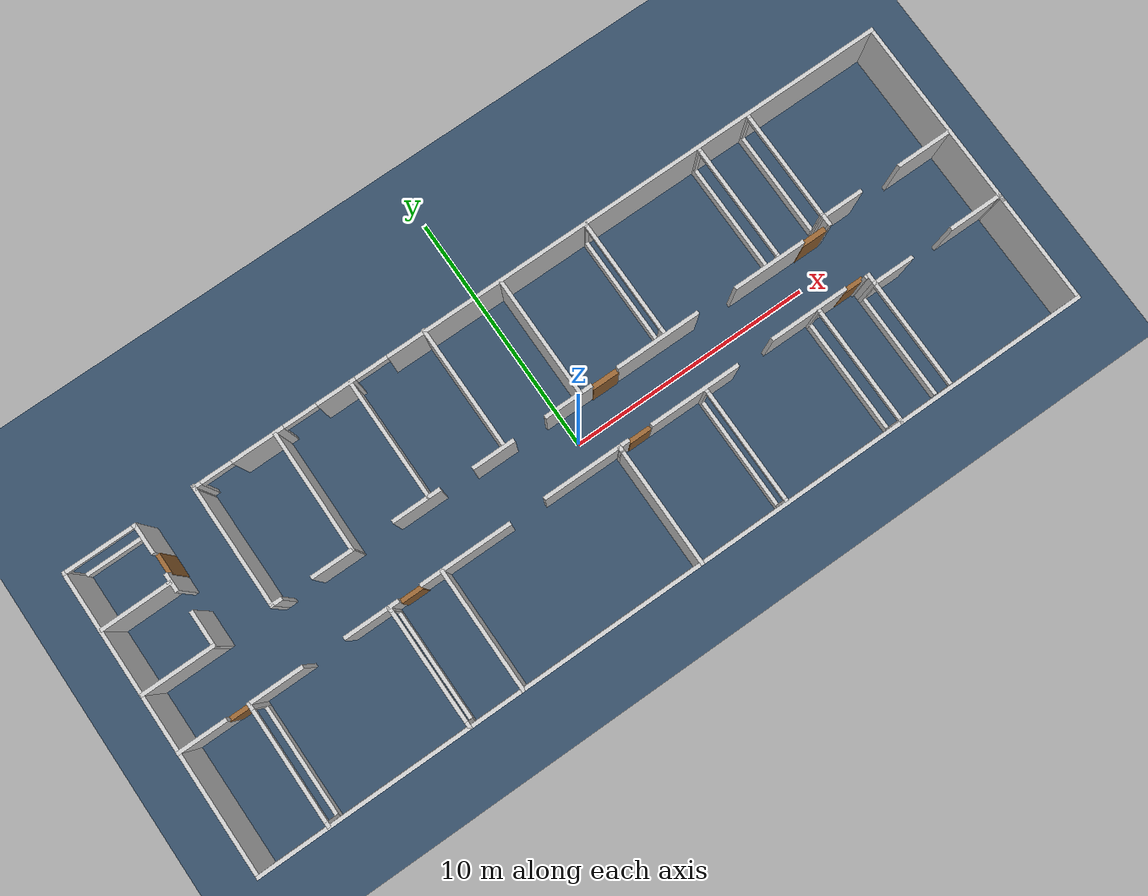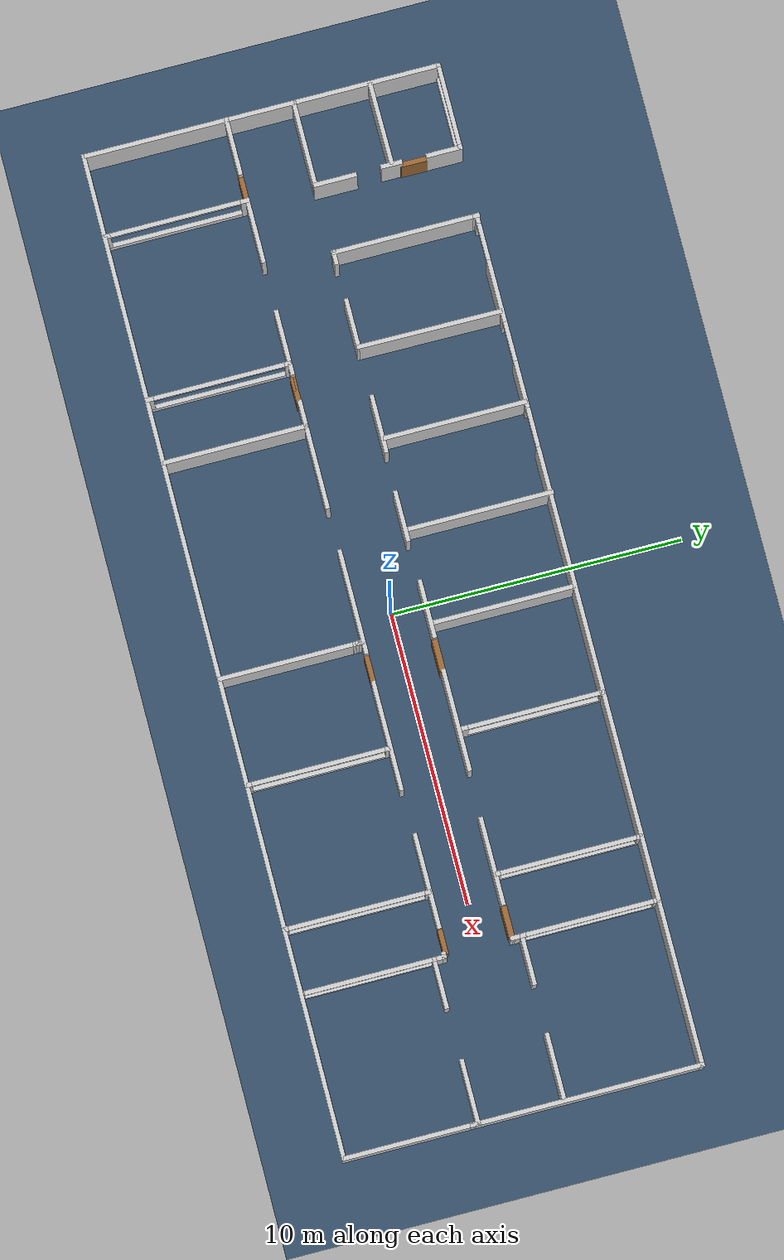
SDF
<sdf version="1.9">
 <world name="loyola">
  <physics name="1ms" type="ignored">
   <max_step_size>0.0025</max_step_size>
   <real_time_factor>1.0</real_time_factor>
  </physics>
  <plugin filename="ignition-gazebo-physics-system" name="gz::sim::systems::Physics"/>
  <plugin filename="ignition-gazebo-sensors-system" name="gz::sim::systems::Sensors">
   <render_engine>ogre2</render_engine>
  </plugin>
  <plugin filename="ignition-gazebo-imu-system" name="gz::sim::systems::Imu"/>
  <plugin filename="ignition-gazebo-scene-broadcaster-system" name="gz::sim::systems::SceneBroadcaster"/>
  <plugin filename="ignition-gazebo-user-commands-system" name="gz::sim::systems::UserCommands"/>
  <scene>
   <ambient>0.3 0.3 0.3 1.0</ambient>
   <background>0.8 0.8 0.8 1.0</background>
   <grid>false</grid>
   <origin_visual>false</origin_visual>
   <shadows>false</shadows>
  </scene>
  <light type="directional" name="sun">
   <cast_shadows>false</cast_shadows>
   <pose>0 0 10 0 0 0</pose>
   <diffuse>0.8 0.8 0.8 1</diffuse>
   <specular>0.2 0.2 0.2 1</specular>
   <attenuation>
    <range>1000</range>
    <constant>0.9</constant>
    <linear>0.01</linear>
    <quadratic>0.001</quadratic>
   </attenuation>
   <direction>-0.25 0.25 -0.9</direction>
  </light>
  <model name="ground_plane">
   <static>true</static>
   <link name="link">
    <collision name="collision">
     <geometry><plane><normal>0 0 1</normal><size>40 15</size></plane></geometry>
    </collision>
    <visual name="visual">
     <geometry><plane><normal>0 0 1</normal><size>40 15</size></plane></geometry>
     <material>
      <ambient>0.2 0.3 0.4 1</ambient>
      <diffuse>0.2 0.3 0.4 1</diffuse>
      <specular>0.1 0.1 0.1 1</specular>
     </material>
    </visual>
   </link>
  </model>
  <model name="Loyola">
   <pose>0.01158 0.01152 0 0 -0 0</pose>
   <link name="Door_0">
    <collision name="Door_0_Collision">
     <geometry><box><size>0.9 0.17 2</size></box></geometry>
     <pose>0 0 1 0 -0 0</pose>
    </collision>
    <visual name="Door_0_Visual">
     <pose>0 0 1 0 -0 0</pose>
     <geometry><box><size>0.9 0.17 2</size></box></geometry>
     <material><ambient>0.6 0.4 0.2 1</ambient><diffuse>0.6 0.4 0.2 1</diffuse></material>
    </visual>
    <pose>-7.88567 -1.23425 0 0 -0 0</pose>
   </link>
   <link name="Door_11">
    <collision name="Door_11_Collision">
     <geometry><box><size>0.9 0.17 2</size></box></geometry>
     <pose>0 0 1 0 -0 0</pose>
    </collision>
    <visual name="Door_11_Visual">
     <pose>0 0 1 0 -0 0</pose>
     <geometry><box><size>0.9 0.17 2</size></box></geometry>
     <material><ambient>0.6 0.4 0.2 1</ambient><diffuse>0.6 0.4 0.2 1</diffuse></material>
    </visual>
    <pose>1.76233 -1.19882 0 0 -0 0</pose>
   </link>
   <link name="Door_12">
    <collision name="Door_12_Collision">
     <geometry><box><size>0.9 0.17 2</size></box></geometry>
     <pose>0 0 1 0 -0 0</pose>
    </collision>
    <visual name="Door_12_Visual">
     <pose>0 0 1 0 -0 0</pose>
     <geometry><box><size>0.9 0.17 2</size></box></geometry>
     <material><ambient>0.6 0.4 0.2 1</ambient><diffuse>0.6 0.4 0.2 1</diffuse></material>
    </visual>
    <pose>11.0856 -1.15143 0 0 -0 0</pose>
   </link>
   <link name="Door_13">
    <collision name="Door_13_Collision">
     <geometry><box><size>1.06522 0.2 2</size></box></geometry>
     <pose>0 0 1 0 -0 0</pose>
    </collision>
    <visual name="Door_13_Visual">
     <pose>0 0 1 0 -0 0</pose>
     <geometry><box><size>1.06522 0.2 2</size></box></geometry>
     <material><ambient>0.6 0.4 0.2 1</ambient><diffuse>0.6 0.4 0.2 1</diffuse></material>
    </visual>
    <pose>11.0002 1.08329 0 0 -0 0</pose>
   </link>
   <link name="Door_14">
    <collision name="Door_14_Collision">
     <geometry><box><size>1.09762 0.2 2</size></box></geometry>
     <pose>0 0 1 0 -0 0</pose>
    </collision>
    <visual name="Door_14_Visual">
     <pose>0 0 1 0 -0 0</pose>
     <geometry><box><size>1.09762 0.2 2</size></box></geometry>
     <material><ambient>0.6 0.4 0.2 1</ambient><diffuse>0.6 0.4 0.2 1</diffuse></material>
    </visual>
    <pose>1.89125 1.11694 0 0 -0 0</pose>
   </link>
   <link name="Door_4">
    <collision name="Door_4_Collision">
     <geometry><box><size>0.9 0.17 2</size></box></geometry>
     <pose>0 0 1 0 -0 0</pose>
    </collision>
    <visual name="Door_4_Visual">
     <pose>0 0 1 0 -0 0</pose>
     <geometry><box><size>0.9 0.17 2</size></box></geometry>
     <material><ambient>0.6 0.4 0.2 1</ambient><diffuse>0.6 0.4 0.2 1</diffuse></material>
    </visual>
    <pose>-14.3181 4.49137 0 0 -0 1.56919</pose>
   </link>
   <link name="Door_7">
    <collision name="Door_7_Collision">
     <geometry><box><size>0.9 0.17 2</size></box></geometry>
     <pose>0 0 1 0 -0 0</pose>
    </collision>
    <visual name="Door_7_Visual">
     <pose>0 0 1 0 -0 0</pose>
     <geometry><box><size>0.9 0.17 2</size></box></geometry>
     <material><ambient>0.6 0.4 0.2 1</ambient><diffuse>0.6 0.4 0.2 1</diffuse></material>
    </visual>
    <pose>-14.895 -1.20399 0 0 -0 0</pose>
   </link>
   <link name="Door_8">
    <collision name="Door_8_Collision">
     <geometry><box><size>0.9 0.17 2</size></box></geometry>
     <pose>0 0 1 0 -0 0</pose>
    </collision>
    <visual name="Door_8_Visual">
     <pose>0 0 1 0 -0 0</pose>
     <geometry><box><size>0.9 0.17 2</size></box></geometry>
     <material><ambient>0.6 0.4 0.2 1</ambient><diffuse>0.6 0.4 0.2 1</diffuse></material>
    </visual>
    <pose>-7.88095 -1.22731 0 0 -0 0</pose>
   </link>
   <link name="Wall_101">
    <collision name="Wall_101_Collision">
     <geometry><box><size>0.5 0.15 2.5</size></box></geometry>
     <pose>0 0 1.25 0 -0 0</pose>
    </collision>
    <visual name="Wall_101_Visual">
     <pose>0 0 1.25 0 -0 0</pose>
     <geometry><box><size>0.5 0.15 2.5</size></box></geometry>
     <material><ambient>0.8 0.8 0.8 1</ambient><diffuse>0.8 0.8 0.8 1</diffuse></material>
     <meta><layer>0</layer></meta>
    </visual>
    <pose>-11.7788 1.1323 0 0 -0 3.14159</pose>
   </link>
   <link name="Wall_104">
    <collision name="Wall_104_Collision">
     <geometry><box><size>5 0.15 2.5</size></box></geometry>
     <pose>0 0 1.25 0 -0 0</pose>
    </collision>
    <visual name="Wall_104_Visual">
     <pose>0 0 1.25 0 -0 0</pose>
     <geometry><box><size>5 0.15 2.5</size></box></geometry>
     <material><ambient>0.8 0.8 0.8 1</ambient><diffuse>0.8 0.8 0.8 1</diffuse></material>
     <meta><layer>0</layer></meta>
    </visual>
    <pose>-11.9538 3.5573 0 0 -0 1.5708</pose>
   </link>
   <link name="Wall_105">
    <collision name="Wall_105_Collision">
     <geometry><box><size>0.25 0.15 2.5</size></box></geometry>
     <pose>0 0 1.25 0 -0 0</pose>
    </collision>
    <visual name="Wall_105_Visual">
     <pose>0 0 1.25 0 -0 0</pose>
     <geometry><box><size>0.25 0.15 2.5</size></box></geometry>
     <material><ambient>0.8 0.8 0.8 1</ambient><diffuse>0.8 0.8 0.8 1</diffuse></material>
     <meta><layer>0</layer></meta>
    </visual>
    <pose>-11.9538 6.03231 0 0 -0 1.5708</pose>
   </link>
   <link name="Wall_110">
    <collision name="Wall_110_Collision">
     <geometry><box><size>0.15 0.15 2.5</size></box></geometry>
     <pose>0 0 1.25 0 -0 0</pose>
    </collision>
    <visual name="Wall_110_Visual">
     <pose>0 0 1.25 0 -0 0</pose>
     <geometry><box><size>0.15 0.15 2.5</size></box></geometry>
     <material><ambient>0.8 0.8 0.8 1</ambient><diffuse>0.8 0.8 0.8 1</diffuse></material>
     <meta><layer>0</layer></meta>
    </visual>
    <pose>-14.4103 3.76218 0 0 -0 0</pose>
   </link>
   <link name="Wall_113">
    <collision name="Wall_113_Collision">
     <geometry><box><size>0.75 0.15 2.5</size></box></geometry>
     <pose>0 0 1.25 0 -0 0</pose>
    </collision>
    <visual name="Wall_113_Visual">
     <pose>0 0 1.25 0 -0 0</pose>
     <geometry><box><size>0.75 0.15 2.5</size></box></geometry>
     <material><ambient>0.8 0.8 0.8 1</ambient><diffuse>0.8 0.8 0.8 1</diffuse></material>
     <meta><layer>0</layer></meta>
    </visual>
    <pose>-14.3366 3.74353 0 0 -0 -1.5708</pose>
   </link>
   <link name="Wall_115">
    <collision name="Wall_115_Collision">
     <geometry><box><size>2.85056 0.15 2.5</size></box></geometry>
     <pose>0 0 1.25 0 -0 0</pose>
    </collision>
    <visual name="Wall_115_Visual">
     <pose>0 0 1.25 0 -0 0</pose>
     <geometry><box><size>2.85056 0.15 2.5</size></box></geometry>
     <material><ambient>0.8 0.8 0.8 1</ambient><diffuse>0.8 0.8 0.8 1</diffuse></material>
     <meta><layer>0</layer></meta>
    </visual>
    <pose>-15.7606 3.75157 0 0 -0 0.007857</pose>
   </link>
   <link name="Wall_118">
    <collision name="Wall_118_Collision">
     <geometry><box><size>12.25 0.15 2.5</size></box></geometry>
     <pose>0 0 1.25 0 -0 0</pose>
    </collision>
    <visual name="Wall_118_Visual">
     <pose>0 0 1.25 0 -0 0</pose>
     <geometry><box><size>12.25 0.15 2.5</size></box></geometry>
     <material><ambient>0.8 0.8 0.8 1</ambient><diffuse>0.8 0.8 0.8 1</diffuse></material>
     <meta><layer>0</layer></meta>
    </visual>
    <pose>-17.1766 -0.048952 0 0 -0 1.5708</pose>
   </link>
   <link name="Wall_12">
    <collision name="Wall_12_Collision">
     <geometry><box><size>7.75 0.15 2.5</size></box></geometry>
     <pose>0 0 1.25 0 -0 0</pose>
    </collision>
    <visual name="Wall_12_Visual">
     <pose>0 0 1.25 0 -0 0</pose>
     <geometry><box><size>7.75 0.15 2.5</size></box></geometry>
     <material><ambient>0.8 0.8 0.8 1</ambient><diffuse>0.8 0.8 0.8 1</diffuse></material>
     <meta><layer>0</layer></meta>
    </visual>
    <pose>17.1864 2.25105 0 0 -0 1.5708</pose>
   </link>
   <link name="Wall_120">
    <collision name="Wall_120_Collision">
     <geometry><box><size>2 0.15 2.5</size></box></geometry>
     <pose>0 0 1.25 0 -0 0</pose>
    </collision>
    <visual name="Wall_120_Visual">
     <pose>0 0 1.25 0 -0 0</pose>
     <geometry><box><size>2 0.15 2.5</size></box></geometry>
     <material><ambient>0.8 0.8 0.8 1</ambient><diffuse>0.8 0.8 0.8 1</diffuse></material>
     <meta><layer>0</layer></meta>
    </visual>
    <pose>-16.2614 -1.19554 0 0 -0 3.14159</pose>
   </link>
   <link name="Wall_124">
    <collision name="Wall_124_Collision">
     <geometry><box><size>0.5 0.15 2.5</size></box></geometry>
     <pose>0 0 1.25 0 -0 0</pose>
    </collision>
    <visual name="Wall_124_Visual">
     <pose>0 0 1.25 0 -0 0</pose>
     <geometry><box><size>0.5 0.15 2.5</size></box></geometry>
     <material><ambient>0.8 0.8 0.8 1</ambient><diffuse>0.8 0.8 0.8 1</diffuse></material>
     <meta><layer>0</layer></meta>
    </visual>
    <pose>1.05325 -1.18357 0 0 -0 0</pose>
   </link>
   <link name="Wall_126">
    <collision name="Wall_126_Collision">
     <geometry><box><size>0.15 0.15 2.5</size></box></geometry>
     <pose>0 0 1.25 0 -0 0</pose>
    </collision>
    <visual name="Wall_126_Visual">
     <pose>0 0 1.25 0 -0 0</pose>
     <geometry><box><size>0.15 0.15 2.5</size></box></geometry>
     <material><ambient>0.8 0.8 0.8 1</ambient><diffuse>0.8 0.8 0.8 1</diffuse></material>
     <meta><layer>0</layer></meta>
    </visual>
    <pose>11.5977 1.07049 0 0 -0 0</pose>
   </link>
   <link name="Wall_13">
    <pose>2.63637 6.05105 0 0 -0 3.14159</pose>
    <visual name="Wall_13_Visual_0">
     <pose>-4.02332 0 1.25 0 -0 0</pose>
     <geometry><box><size>21.2034 0.15 2.5</size></box></geometry>
     <material><ambient>0.8 0.8 0.8 1</ambient><diffuse>0.8 0.8 0.8 1</diffuse></material>
     <meta><layer>0</layer></meta>
    </visual>
    <collision name="Wall_13_Collision_0">
     <geometry><box><size>21.2034 0.15 2.5</size></box></geometry>
     <pose>-4.02332 0 1.25 0 -0 0</pose>
    </collision>
    <visual name="Wall_13_Visual_1">
     <pose>8.7334 0 1.25 0 -0 0</pose>
     <geometry><box><size>1.61371 0.15 2.5</size></box></geometry>
     <material><ambient>0.8 0.8 0.8 1</ambient><diffuse>0.8 0.8 0.8 1</diffuse></material>
     <meta><layer>0</layer></meta>
    </visual>
    <collision name="Wall_13_Collision_1">
     <geometry><box><size>1.61371 0.15 2.5</size></box></geometry>
     <pose>8.7334 0 1.25 0 -0 0</pose>
    </collision>
    <visual name="Wall_13_Visual_2">
     <pose>11.9771 0 1.25 0 -0 0</pose>
     <geometry><box><size>2.13835 0.15 2.5</size></box></geometry>
     <material><ambient>0.8 0.8 0.8 1</ambient><diffuse>0.8 0.8 0.8 1</diffuse></material>
     <meta><layer>0</layer></meta>
    </visual>
    <collision name="Wall_13_Collision_2">
     <geometry><box><size>2.13835 0.15 2.5</size></box></geometry>
     <pose>11.9771 0 1.25 0 -0 0</pose>
    </collision>
    <visual name="Wall_13_Visual_3">
     <pose>14.4717 0 1.25 0 -0 0</pose>
     <geometry><box><size>0.30661 0.15 2.5</size></box></geometry>
     <material><ambient>0.8 0.8 0.8 1</ambient><diffuse>0.8 0.8 0.8 1</diffuse></material>
     <meta><layer>0</layer></meta>
    </visual>
    <collision name="Wall_13_Collision_3">
     <geometry><box><size>0.30661 0.15 2.5</size></box></geometry>
     <pose>14.4717 0 1.25 0 -0 0</pose>
    </collision>
    <visual name="Wall_13_Visual_4">
     <pose>7.25245 0 2.25 0 -0 0</pose>
     <geometry><box><size>1.34818 0.15 0.5</size></box></geometry>
     <material><ambient>0.8 0.8 0.8 1</ambient><diffuse>0.8 0.8 0.8 1</diffuse></material>
     <meta><layer>0</layer></meta>
    </visual>
    <collision name="Wall_13_Collision_4">
     <geometry><box><size>1.34818 0.15 0.5</size></box></geometry>
     <pose>7.25245 0 2.25 0 -0 0</pose>
    </collision>
    <visual name="Wall_13_Visual_5">
     <pose>10.2241 0 2.25 0 -0 0</pose>
     <geometry><box><size>1.36767 0.15 0.5</size></box></geometry>
     <material><ambient>0.8 0.8 0.8 1</ambient><diffuse>0.8 0.8 0.8 1</diffuse></material>
     <meta><layer>0</layer></meta>
    </visual>
    <collision name="Wall_13_Collision_5">
     <geometry><box><size>1.36767 0.15 0.5</size></box></geometry>
     <pose>10.2241 0 2.25 0 -0 0</pose>
    </collision>
    <visual name="Wall_13_Visual_6">
     <pose>13.6823 0 2.25 0 -0 0</pose>
     <geometry><box><size>1.27212 0.15 0.5</size></box></geometry>
     <material><ambient>0.8 0.8 0.8 1</ambient><diffuse>0.8 0.8 0.8 1</diffuse></material>
     <meta><layer>0</layer></meta>
    </visual>
    <collision name="Wall_13_Collision_6">
     <geometry><box><size>1.27212 0.15 0.5</size></box></geometry>
     <pose>13.6823 0 2.25 0 -0 0</pose>
    </collision>
   </link>
   <link name="Wall_132">
    <collision name="Wall_132_Collision">
     <geometry><box><size>1.75 0.15 2.5</size></box></geometry>
     <pose>0 0 1.25 0 -0 0</pose>
    </collision>
    <visual name="Wall_132_Visual">
     <pose>0 0 1.25 0 -0 0</pose>
     <geometry><box><size>1.75 0.15 2.5</size></box></geometry>
     <material><ambient>0.8 0.8 0.8 1</ambient><diffuse>0.8 0.8 0.8 1</diffuse></material>
     <meta><layer>0</layer></meta>
    </visual>
    <pose>12.3958 1.40203 0 0 -0 3.14159</pose>
   </link>
   <link name="Wall_134">
    <collision name="Wall_134_Collision">
     <geometry><box><size>0.15 0.15 2.5</size></box></geometry>
     <pose>0 0 1.25 0 -0 0</pose>
    </collision>
    <visual name="Wall_134_Visual">
     <pose>0 0 1.25 0 -0 0</pose>
     <geometry><box><size>0.15 0.15 2.5</size></box></geometry>
     <material><ambient>0.8 0.8 0.8 1</ambient><diffuse>0.8 0.8 0.8 1</diffuse></material>
     <meta><layer>0</layer></meta>
    </visual>
    <pose>11.5977 1.07049 0 0 -0 0</pose>
   </link>
   <link name="Wall_136">
    <collision name="Wall_136_Collision">
     <geometry><box><size>0.48154 0.15 2.5</size></box></geometry>
     <pose>0 0 1.25 0 -0 0</pose>
    </collision>
    <visual name="Wall_136_Visual">
     <pose>0 0 1.25 0 -0 0</pose>
     <geometry><box><size>0.48154 0.15 2.5</size></box></geometry>
     <material><ambient>0.8 0.8 0.8 1</ambient><diffuse>0.8 0.8 0.8 1</diffuse></material>
     <meta><layer>0</layer></meta>
    </visual>
    <pose>11.5968 1.23626 0 0 -0 -1.56493</pose>
   </link>
   <link name="Wall_138">
    <pose>-14.3764 -3.61957 0 0 -0 -1.5708</pose>
    <visual name="Wall_138_Visual_0">
     <pose>-2.34104 0 1.25 0 -0 0</pose>
     <geometry><box><size>0.317931 0.15 2.5</size></box></geometry>
     <material><ambient>0.8 0.8 0.8 1</ambient><diffuse>0.8 0.8 0.8 1</diffuse></material>
     <meta><layer>0</layer></meta>
    </visual>
    <collision name="Wall_138_Collision_0">
     <geometry><box><size>0.317931 0.15 2.5</size></box></geometry>
     <pose>-2.34104 0 1.25 0 -0 0</pose>
    </collision>
    <visual name="Wall_138_Visual_1">
     <pose>0.158965 0 0.25 0 -0 0</pose>
     <geometry><box><size>4.68207 0.15 0.5</size></box></geometry>
     <material><ambient>0.8 0.8 0.8 1</ambient><diffuse>0.8 0.8 0.8 1</diffuse></material>
     <meta><layer>0</layer></meta>
    </visual>
    <collision name="Wall_138_Collision_1">
     <geometry><box><size>4.68207 0.15 0.5</size></box></geometry>
     <pose>0.158965 0 0.25 0 -0 0</pose>
    </collision>
    <visual name="Wall_138_Visual_2">
     <pose>2.39397 0 1.5 0 -0 0</pose>
     <geometry><box><size>0.212069 0.15 2</size></box></geometry>
     <material><ambient>0.8 0.8 0.8 1</ambient><diffuse>0.8 0.8 0.8 1</diffuse></material>
     <meta><layer>0</layer></meta>
    </visual>
    <collision name="Wall_138_Collision_2">
     <geometry><box><size>0.212069 0.15 2</size></box></geometry>
     <pose>2.39397 0 1.5 0 -0 0</pose>
    </collision>
    <visual name="Wall_138_Visual_3">
     <pose>0.052931 0 2.4 0 -0 0</pose>
     <geometry><box><size>4.47 0.15 0.2</size></box></geometry>
     <material><ambient>0.8 0.8 0.8 1</ambient><diffuse>0.8 0.8 0.8 1</diffuse></material>
     <meta><layer>0</layer></meta>
    </visual>
    <collision name="Wall_138_Collision_3">
     <geometry><box><size>4.47 0.15 0.2</size></box></geometry>
     <pose>0.052931 0 2.4 0 -0 0</pose>
    </collision>
   </link>
   <link name="Wall_140">
    <pose>4.5175 -3.63037 0 0 -0 -1.5708</pose>
    <visual name="Wall_140_Visual_0">
     <pose>-2.36498 0 1.25 0 -0 0</pose>
     <geometry><box><size>0.270042 0.15 2.5</size></box></geometry>
     <material><ambient>0.8 0.8 0.8 1</ambient><diffuse>0.8 0.8 0.8 1</diffuse></material>
     <meta><layer>0</layer></meta>
    </visual>
    <collision name="Wall_140_Collision_0">
     <geometry><box><size>0.270042 0.15 2.5</size></box></geometry>
     <pose>-2.36498 0 1.25 0 -0 0</pose>
    </collision>
    <visual name="Wall_140_Visual_1">
     <pose>0.135021 0 0.25 0 -0 0</pose>
     <geometry><box><size>4.72996 0.15 0.5</size></box></geometry>
     <material><ambient>0.8 0.8 0.8 1</ambient><diffuse>0.8 0.8 0.8 1</diffuse></material>
     <meta><layer>0</layer></meta>
    </visual>
    <collision name="Wall_140_Collision_1">
     <geometry><box><size>4.72996 0.15 0.5</size></box></geometry>
     <pose>0.135021 0 0.25 0 -0 0</pose>
    </collision>
    <visual name="Wall_140_Visual_2">
     <pose>2.40552 0 1.5 0 -0 0</pose>
     <geometry><box><size>0.188958 0.15 2</size></box></geometry>
     <material><ambient>0.8 0.8 0.8 1</ambient><diffuse>0.8 0.8 0.8 1</diffuse></material>
     <meta><layer>0</layer></meta>
    </visual>
    <collision name="Wall_140_Collision_2">
     <geometry><box><size>0.188958 0.15 2</size></box></geometry>
     <pose>2.40552 0 1.5 0 -0 0</pose>
    </collision>
    <visual name="Wall_140_Visual_3">
     <pose>0.040542 0 2.4 0 -0 0</pose>
     <geometry><box><size>4.541 0.15 0.2</size></box></geometry>
     <material><ambient>0.8 0.8 0.8 1</ambient><diffuse>0.8 0.8 0.8 1</diffuse></material>
     <meta><layer>0</layer></meta>
    </visual>
    <collision name="Wall_140_Collision_3">
     <geometry><box><size>4.541 0.15 0.2</size></box></geometry>
     <pose>0.040542 0 2.4 0 -0 0</pose>
    </collision>
   </link>
   <link name="Wall_143">
    <pose>9.43238 -3.62443 0 0 -0 -1.5708</pose>
    <visual name="Wall_143_Visual_0">
     <pose>-2.39953 0 1.25 0 -0 0</pose>
     <geometry><box><size>0.200941 0.15 2.5</size></box></geometry>
     <material><ambient>0.8 0.8 0.8 1</ambient><diffuse>0.8 0.8 0.8 1</diffuse></material>
     <meta><layer>0</layer></meta>
    </visual>
    <collision name="Wall_143_Collision_0">
     <geometry><box><size>0.200941 0.15 2.5</size></box></geometry>
     <pose>-2.39953 0 1.25 0 -0 0</pose>
    </collision>
    <visual name="Wall_143_Visual_1">
     <pose>0.10047 0 0.25 0 -0 0</pose>
     <geometry><box><size>4.79906 0.15 0.5</size></box></geometry>
     <material><ambient>0.8 0.8 0.8 1</ambient><diffuse>0.8 0.8 0.8 1</diffuse></material>
     <meta><layer>0</layer></meta>
    </visual>
    <collision name="Wall_143_Collision_1">
     <geometry><box><size>4.79906 0.15 0.5</size></box></geometry>
     <pose>0.10047 0 0.25 0 -0 0</pose>
    </collision>
    <visual name="Wall_143_Visual_2">
     <pose>2.42347 0 1.5 0 -0 0</pose>
     <geometry><box><size>0.153059 0.15 2</size></box></geometry>
     <material><ambient>0.8 0.8 0.8 1</ambient><diffuse>0.8 0.8 0.8 1</diffuse></material>
     <meta><layer>0</layer></meta>
    </visual>
    <collision name="Wall_143_Collision_2">
     <geometry><box><size>0.153059 0.15 2</size></box></geometry>
     <pose>2.42347 0 1.5 0 -0 0</pose>
    </collision>
    <visual name="Wall_143_Visual_3">
     <pose>0.023941 0 2.4 0 -0 0</pose>
     <geometry><box><size>4.646 0.15 0.2</size></box></geometry>
     <material><ambient>0.8 0.8 0.8 1</ambient><diffuse>0.8 0.8 0.8 1</diffuse></material>
     <meta><layer>0</layer></meta>
    </visual>
    <collision name="Wall_143_Collision_3">
     <geometry><box><size>4.646 0.15 0.2</size></box></geometry>
     <pose>0.023941 0 2.4 0 -0 0</pose>
    </collision>
   </link>
   <link name="Wall_145">
    <pose>11.6228 -3.76099 0 0 -0 -1.5708</pose>
    <visual name="Wall_145_Visual_0">
     <pose>-2.18309 0 1.25 0 -0 0</pose>
     <geometry><box><size>0.133827 0.15 2.5</size></box></geometry>
     <material><ambient>0.8 0.8 0.8 1</ambient><diffuse>0.8 0.8 0.8 1</diffuse></material>
     <meta><layer>0</layer></meta>
    </visual>
    <collision name="Wall_145_Collision_0">
     <geometry><box><size>0.133827 0.15 2.5</size></box></geometry>
     <pose>-2.18309 0 1.25 0 -0 0</pose>
    </collision>
    <visual name="Wall_145_Visual_1">
     <pose>0.066914 0 0.25 0 -0 0</pose>
     <geometry><box><size>4.36617 0.15 0.5</size></box></geometry>
     <material><ambient>0.8 0.8 0.8 1</ambient><diffuse>0.8 0.8 0.8 1</diffuse></material>
     <meta><layer>0</layer></meta>
    </visual>
    <collision name="Wall_145_Collision_1">
     <geometry><box><size>4.36617 0.15 0.5</size></box></geometry>
     <pose>0.066914 0 0.25 0 -0 0</pose>
    </collision>
    <visual name="Wall_145_Visual_2">
     <pose>2.24391 0 1.5 0 -0 0</pose>
     <geometry><box><size>0.012173 0.15 2</size></box></geometry>
     <material><ambient>0.8 0.8 0.8 1</ambient><diffuse>0.8 0.8 0.8 1</diffuse></material>
     <meta><layer>0</layer></meta>
    </visual>
    <collision name="Wall_145_Collision_2">
     <geometry><box><size>0.012173 0.15 2</size></box></geometry>
     <pose>2.24391 0 1.5 0 -0 0</pose>
    </collision>
    <visual name="Wall_145_Visual_3">
     <pose>0.060827 0 2.4 0 -0 0</pose>
     <geometry><box><size>4.354 0.15 0.2</size></box></geometry>
     <material><ambient>0.8 0.8 0.8 1</ambient><diffuse>0.8 0.8 0.8 1</diffuse></material>
     <meta><layer>0</layer></meta>
    </visual>
    <collision name="Wall_145_Collision_3">
     <geometry><box><size>4.354 0.15 0.2</size></box></geometry>
     <pose>0.060827 0 2.4 0 -0 0</pose>
    </collision>
   </link>
   <link name="Wall_147">
    <pose>11.5958 3.70203 0 0 -0 1.5708</pose>
    <visual name="Wall_147_Visual_0">
     <pose>-2.27227 0 1.25 0 -0 0</pose>
     <geometry><box><size>0.205451 0.15 2.5</size></box></geometry>
     <material><ambient>0.8 0.8 0.8 1</ambient><diffuse>0.8 0.8 0.8 1</diffuse></material>
     <meta><layer>0</layer></meta>
    </visual>
    <collision name="Wall_147_Collision_0">
     <geometry><box><size>0.205451 0.15 2.5</size></box></geometry>
     <pose>-2.27227 0 1.25 0 -0 0</pose>
    </collision>
    <visual name="Wall_147_Visual_1">
     <pose>0.102726 0 0.25 0 -0 0</pose>
     <geometry><box><size>4.54455 0.15 0.5</size></box></geometry>
     <material><ambient>0.8 0.8 0.8 1</ambient><diffuse>0.8 0.8 0.8 1</diffuse></material>
     <meta><layer>0</layer></meta>
    </visual>
    <collision name="Wall_147_Collision_1">
     <geometry><box><size>4.54455 0.15 0.5</size></box></geometry>
     <pose>0.102726 0 0.25 0 -0 0</pose>
    </collision>
    <visual name="Wall_147_Visual_2">
     <pose>2.27273 0 1.5 0 -0 0</pose>
     <geometry><box><size>0.204549 0.15 2</size></box></geometry>
     <material><ambient>0.8 0.8 0.8 1</ambient><diffuse>0.8 0.8 0.8 1</diffuse></material>
     <meta><layer>0</layer></meta>
    </visual>
    <collision name="Wall_147_Collision_2">
     <geometry><box><size>0.204549 0.15 2</size></box></geometry>
     <pose>2.27273 0 1.5 0 -0 0</pose>
    </collision>
    <visual name="Wall_147_Visual_3">
     <pose>0.000451 0 2.4 0 -0 0</pose>
     <geometry><box><size>4.34 0.15 0.2</size></box></geometry>
     <material><ambient>0.8 0.8 0.8 1</ambient><diffuse>0.8 0.8 0.8 1</diffuse></material>
     <meta><layer>0</layer></meta>
    </visual>
    <collision name="Wall_147_Collision_3">
     <geometry><box><size>4.34 0.15 0.2</size></box></geometry>
     <pose>0.000451 0 2.4 0 -0 0</pose>
    </collision>
   </link>
   <link name="Wall_149">
    <pose>9.42159 3.57138 0 0 -0 1.5708</pose>
    <visual name="Wall_149_Visual_0">
     <pose>-2.41537 0 1.25 0 -0 0</pose>
     <geometry><box><size>0.169253 0.15 2.5</size></box></geometry>
     <material><ambient>0.8 0.8 0.8 1</ambient><diffuse>0.8 0.8 0.8 1</diffuse></material>
     <meta><layer>0</layer></meta>
    </visual>
    <collision name="Wall_149_Collision_0">
     <geometry><box><size>0.169253 0.15 2.5</size></box></geometry>
     <pose>-2.41537 0 1.25 0 -0 0</pose>
    </collision>
    <visual name="Wall_149_Visual_1">
     <pose>0.084626 0 0.25 0 -0 0</pose>
     <geometry><box><size>4.83075 0.15 0.5</size></box></geometry>
     <material><ambient>0.8 0.8 0.8 1</ambient><diffuse>0.8 0.8 0.8 1</diffuse></material>
     <meta><layer>0</layer></meta>
    </visual>
    <collision name="Wall_149_Collision_1">
     <geometry><box><size>4.83075 0.15 0.5</size></box></geometry>
     <pose>0.084626 0 0.25 0 -0 0</pose>
    </collision>
    <visual name="Wall_149_Visual_2">
     <pose>2.40163 0 1.5 0 -0 0</pose>
     <geometry><box><size>0.196747 0.15 2</size></box></geometry>
     <material><ambient>0.8 0.8 0.8 1</ambient><diffuse>0.8 0.8 0.8 1</diffuse></material>
     <meta><layer>0</layer></meta>
    </visual>
    <collision name="Wall_149_Collision_2">
     <geometry><box><size>0.196747 0.15 2</size></box></geometry>
     <pose>2.40163 0 1.5 0 -0 0</pose>
    </collision>
    <visual name="Wall_149_Visual_3">
     <pose>-0.013747 0 2.4 0 -0 0</pose>
     <geometry><box><size>4.634 0.15 0.2</size></box></geometry>
     <material><ambient>0.8 0.8 0.8 1</ambient><diffuse>0.8 0.8 0.8 1</diffuse></material>
     <meta><layer>0</layer></meta>
    </visual>
    <collision name="Wall_149_Collision_3">
     <geometry><box><size>4.634 0.15 0.2</size></box></geometry>
     <pose>-0.013747 0 2.4 0 -0 0</pose>
    </collision>
   </link>
   <link name="Wall_151">
    <pose>4.49684 3.58842 0 0 -0 1.5708</pose>
    <visual name="Wall_151_Visual_0">
     <pose>-2.33025 0 1.25 0 -0 0</pose>
     <geometry><box><size>0.339497 0.15 2.5</size></box></geometry>
     <material><ambient>0.8 0.8 0.8 1</ambient><diffuse>0.8 0.8 0.8 1</diffuse></material>
     <meta><layer>0</layer></meta>
    </visual>
    <collision name="Wall_151_Collision_0">
     <geometry><box><size>0.339497 0.15 2.5</size></box></geometry>
     <pose>-2.33025 0 1.25 0 -0 0</pose>
    </collision>
    <visual name="Wall_151_Visual_1">
     <pose>0.169748 0 0.25 0 -0 0</pose>
     <geometry><box><size>4.6605 0.15 0.5</size></box></geometry>
     <material><ambient>0.8 0.8 0.8 1</ambient><diffuse>0.8 0.8 0.8 1</diffuse></material>
     <meta><layer>0</layer></meta>
    </visual>
    <collision name="Wall_151_Collision_1">
     <geometry><box><size>4.6605 0.15 0.5</size></box></geometry>
     <pose>0.169748 0 0.25 0 -0 0</pose>
    </collision>
    <visual name="Wall_151_Visual_2">
     <pose>2.41875 0 1.5 0 -0 0</pose>
     <geometry><box><size>0.162503 0.15 2</size></box></geometry>
     <material><ambient>0.8 0.8 0.8 1</ambient><diffuse>0.8 0.8 0.8 1</diffuse></material>
     <meta><layer>0</layer></meta>
    </visual>
    <collision name="Wall_151_Collision_2">
     <geometry><box><size>0.162503 0.15 2</size></box></geometry>
     <pose>2.41875 0 1.5 0 -0 0</pose>
    </collision>
    <visual name="Wall_151_Visual_3">
     <pose>0.088497 0 2.4 0 -0 0</pose>
     <geometry><box><size>4.498 0.15 0.2</size></box></geometry>
     <material><ambient>0.8 0.8 0.8 1</ambient><diffuse>0.8 0.8 0.8 1</diffuse></material>
     <meta><layer>0</layer></meta>
    </visual>
    <collision name="Wall_151_Collision_3">
     <geometry><box><size>4.498 0.15 0.2</size></box></geometry>
     <pose>0.088497 0 2.4 0 -0 0</pose>
    </collision>
   </link>
   <link name="Wall_25">
    <collision name="Wall_25_Collision">
     <geometry><box><size>1.75 0.15 2.5</size></box></geometry>
     <pose>0 0 1.25 0 -0 0</pose>
    </collision>
    <visual name="Wall_25_Visual">
     <pose>0 0 1.25 0 -0 0</pose>
     <geometry><box><size>1.75 0.15 2.5</size></box></geometry>
     <material><ambient>0.8 0.8 0.8 1</ambient><diffuse>0.8 0.8 0.8 1</diffuse></material>
     <meta><layer>0</layer></meta>
    </visual>
    <pose>-9.47197 1.14108 0 0 -0 0</pose>
   </link>
   <link name="Wall_26">
    <collision name="Wall_26_Collision">
     <geometry><box><size>4.97433 0.15 2.5</size></box></geometry>
     <pose>0 0 1.25 0 -0 0</pose>
    </collision>
    <visual name="Wall_26_Visual">
     <pose>0 0 1.25 0 -0 0</pose>
     <geometry><box><size>4.97433 0.15 2.5</size></box></geometry>
     <material><ambient>0.8 0.8 0.8 1</ambient><diffuse>0.8 0.8 0.8 1</diffuse></material>
     <meta><layer>0</layer></meta>
    </visual>
    <pose>-8.65478 3.55748 0 0 -0 1.56367</pose>
   </link>
   <link name="Wall_28">
    <collision name="Wall_28_Collision">
     <geometry><box><size>2 0.15 2.5</size></box></geometry>
     <pose>0 0 1.25 0 -0 0</pose>
    </collision>
    <visual name="Wall_28_Visual">
     <pose>0 0 1.25 0 -0 0</pose>
     <geometry><box><size>2 0.15 2.5</size></box></geometry>
     <material><ambient>0.8 0.8 0.8 1</ambient><diffuse>0.8 0.8 0.8 1</diffuse></material>
     <meta><layer>0</layer></meta>
    </visual>
    <pose>-6.01416 1.14618 0 0 -0 0</pose>
   </link>
   <link name="Wall_3">
    <collision name="Wall_3_Collision">
     <geometry><box><size>34.513 0.15 2.5</size></box></geometry>
     <pose>0 0 1.25 0 -0 0</pose>
    </collision>
    <visual name="Wall_3_Visual">
     <pose>0 0 1.25 0 -0 0</pose>
     <geometry><box><size>34.513 0.15 2.5</size></box></geometry>
     <material><ambient>0.8 0.8 0.8 1</ambient><diffuse>0.8 0.8 0.8 1</diffuse></material>
     <meta><layer>0</layer></meta>
    </visual>
    <pose>0.004874 -6.09895 0 0 -0 0</pose>
   </link>
   <link name="Wall_30">
    <collision name="Wall_30_Collision">
     <geometry><box><size>5 0.15 2.5</size></box></geometry>
     <pose>0 0 1.25 0 -0 0</pose>
    </collision>
    <visual name="Wall_30_Visual">
     <pose>0 0 1.25 0 -0 0</pose>
     <geometry><box><size>5 0.15 2.5</size></box></geometry>
     <material><ambient>0.8 0.8 0.8 1</ambient><diffuse>0.8 0.8 0.8 1</diffuse></material>
     <meta><layer>0</layer></meta>
    </visual>
    <pose>-5.50275 3.57778 0 0 -0 1.5708</pose>
   </link>
   <link name="Wall_32">
    <collision name="Wall_32_Collision">
     <geometry><box><size>1.75 0.15 2.5</size></box></geometry>
     <pose>0 0 1.25 0 -0 0</pose>
    </collision>
    <visual name="Wall_32_Visual">
     <pose>0 0 1.25 0 -0 0</pose>
     <geometry><box><size>1.75 0.15 2.5</size></box></geometry>
     <material><ambient>0.8 0.8 0.8 1</ambient><diffuse>0.8 0.8 0.8 1</diffuse></material>
     <meta><layer>0</layer></meta>
    </visual>
    <pose>-2.84073 1.09298 0 0 -0 0</pose>
   </link>
   <link name="Wall_34">
    <collision name="Wall_34_Collision">
     <geometry><box><size>5 0.15 2.5</size></box></geometry>
     <pose>0 0 1.25 0 -0 0</pose>
    </collision>
    <visual name="Wall_34_Visual">
     <pose>0 0 1.25 0 -0 0</pose>
     <geometry><box><size>5 0.15 2.5</size></box></geometry>
     <material><ambient>0.8 0.8 0.8 1</ambient><diffuse>0.8 0.8 0.8 1</diffuse></material>
     <meta><layer>0</layer></meta>
    </visual>
    <pose>-2.36392 3.66882 0 0 -0 -1.5708</pose>
   </link>
   <link name="Wall_36">
    <collision name="Wall_36_Collision">
     <geometry><box><size>2 0.15 2.5</size></box></geometry>
     <pose>0 0 1.25 0 -0 0</pose>
    </collision>
    <visual name="Wall_36_Visual">
     <pose>0 0 1.25 0 -0 0</pose>
     <geometry><box><size>2 0.15 2.5</size></box></geometry>
     <material><ambient>0.8 0.8 0.8 1</ambient><diffuse>0.8 0.8 0.8 1</diffuse></material>
     <meta><layer>0</layer></meta>
    </visual>
    <pose>0.353333 1.12811 0 0 -0 0</pose>
   </link>
   <link name="Wall_4">
    <collision name="Wall_4_Collision">
     <geometry><box><size>4.5 0.15 2.5</size></box></geometry>
     <pose>0 0 1.25 0 -0 0</pose>
    </collision>
    <visual name="Wall_4_Visual">
     <pose>0 0 1.25 0 -0 0</pose>
     <geometry><box><size>4.5 0.15 2.5</size></box></geometry>
     <material><ambient>0.8 0.8 0.8 1</ambient><diffuse>0.8 0.8 0.8 1</diffuse></material>
     <meta><layer>0</layer></meta>
    </visual>
    <pose>17.1864 -3.92395 0 0 -0 1.5708</pose>
   </link>
   <link name="Wall_41">
    <collision name="Wall_41_Collision">
     <geometry><box><size>5 0.15 2.5</size></box></geometry>
     <pose>0 0 1.25 0 -0 0</pose>
    </collision>
    <visual name="Wall_41_Visual">
     <pose>0 0 1.25 0 -0 0</pose>
     <geometry><box><size>5 0.15 2.5</size></box></geometry>
     <material><ambient>0.8 0.8 0.8 1</ambient><diffuse>0.8 0.8 0.8 1</diffuse></material>
     <meta><layer>0</layer></meta>
    </visual>
    <pose>0.85276 3.55891 0 0 -0 -1.5708</pose>
   </link>
   <link name="Wall_43">
    <collision name="Wall_43_Collision">
     <geometry><box><size>3.5 0.15 2.5</size></box></geometry>
     <pose>0 0 1.25 0 -0 0</pose>
    </collision>
    <visual name="Wall_43_Visual">
     <pose>0 0 1.25 0 -0 0</pose>
     <geometry><box><size>3.5 0.15 2.5</size></box></geometry>
     <material><ambient>0.8 0.8 0.8 1</ambient><diffuse>0.8 0.8 0.8 1</diffuse></material>
     <meta><layer>0</layer></meta>
    </visual>
    <pose>4.16705 1.12725 0 0 -0 0</pose>
   </link>
   <link name="Wall_45">
    <collision name="Wall_45_Collision">
     <geometry><box><size>3 0.15 2.5</size></box></geometry>
     <pose>0 0 1.25 0 -0 0</pose>
    </collision>
    <visual name="Wall_45_Visual">
     <pose>0 0 1.25 0 -0 0</pose>
     <geometry><box><size>3 0.15 2.5</size></box></geometry>
     <material><ambient>0.8 0.8 0.8 1</ambient><diffuse>0.8 0.8 0.8 1</diffuse></material>
     <meta><layer>0</layer></meta>
    </visual>
    <pose>8.97351 1.07848 0 0 -0 0</pose>
   </link>
   <link name="Wall_5">
    <collision name="Wall_5_Collision">
     <geometry><box><size>0.15 0.15 2.5</size></box></geometry>
     <pose>0 0 1.25 0 -0 0</pose>
    </collision>
    <visual name="Wall_5_Visual">
     <pose>0 0 1.25 0 -0 0</pose>
     <geometry><box><size>0.15 0.15 2.5</size></box></geometry>
     <material><ambient>0.8 0.8 0.8 1</ambient><diffuse>0.8 0.8 0.8 1</diffuse></material>
     <meta><layer>0</layer></meta>
    </visual>
    <pose>17.1864 -1.74895 0 0 -0 0</pose>
   </link>
   <link name="Wall_50">
    <collision name="Wall_50_Collision">
     <geometry><box><size>2.25 0.15 2.5</size></box></geometry>
     <pose>0 0 1.25 0 -0 0</pose>
    </collision>
    <visual name="Wall_50_Visual">
     <pose>0 0 1.25 0 -0 0</pose>
     <geometry><box><size>2.25 0.15 2.5</size></box></geometry>
     <material><ambient>0.8 0.8 0.8 1</ambient><diffuse>0.8 0.8 0.8 1</diffuse></material>
     <meta><layer>0</layer></meta>
    </visual>
    <pose>16.0128 1.37401 0 0 -0 0</pose>
   </link>
   <link name="Wall_52">
    <collision name="Wall_52_Collision">
     <geometry><box><size>1.75 0.15 2.5</size></box></geometry>
     <pose>0 0 1.25 0 -0 0</pose>
    </collision>
    <visual name="Wall_52_Visual">
     <pose>0 0 1.25 0 -0 0</pose>
     <geometry><box><size>1.75 0.15 2.5</size></box></geometry>
     <material><ambient>0.8 0.8 0.8 1</ambient><diffuse>0.8 0.8 0.8 1</diffuse></material>
     <meta><layer>0</layer></meta>
    </visual>
    <pose>12.4228 -1.58599 0 0 -0 3.14159</pose>
   </link>
   <link name="Wall_53">
    <collision name="Wall_53_Collision">
     <geometry><box><size>0.5 0.15 2.5</size></box></geometry>
     <pose>0 0 1.25 0 -0 0</pose>
    </collision>
    <visual name="Wall_53_Visual">
     <pose>0 0 1.25 0 -0 0</pose>
     <geometry><box><size>0.5 0.15 2.5</size></box></geometry>
     <material><ambient>0.8 0.8 0.8 1</ambient><diffuse>0.8 0.8 0.8 1</diffuse></material>
     <meta><layer>0</layer></meta>
    </visual>
    <pose>11.6228 -1.41099 0 0 -0 1.5708</pose>
   </link>
   <link name="Wall_54">
    <collision name="Wall_54_Collision">
     <geometry><box><size>0.25 0.15 2.5</size></box></geometry>
     <pose>0 0 1.25 0 -0 0</pose>
    </collision>
    <visual name="Wall_54_Visual">
     <pose>0 0 1.25 0 -0 0</pose>
     <geometry><box><size>0.25 0.15 2.5</size></box></geometry>
     <material><ambient>0.8 0.8 0.8 1</ambient><diffuse>0.8 0.8 0.8 1</diffuse></material>
     <meta><layer>0</layer></meta>
    </visual>
    <pose>11.5728 -1.23599 0 0 -0 3.14159</pose>
   </link>
   <link name="Wall_56">
    <collision name="Wall_56_Collision">
     <geometry><box><size>3.25 0.15 2.5</size></box></geometry>
     <pose>0 0 1.25 0 -0 0</pose>
    </collision>
    <visual name="Wall_56_Visual">
     <pose>0 0 1.25 0 -0 0</pose>
     <geometry><box><size>3.25 0.15 2.5</size></box></geometry>
     <material><ambient>0.8 0.8 0.8 1</ambient><diffuse>0.8 0.8 0.8 1</diffuse></material>
     <meta><layer>0</layer></meta>
    </visual>
    <pose>9.0661 -1.1549 0 0 -0 3.14159</pose>
   </link>
   <link name="Wall_58">
    <collision name="Wall_58_Collision">
     <geometry><box><size>3.75 0.15 2.5</size></box></geometry>
     <pose>0 0 1.25 0 -0 0</pose>
    </collision>
    <visual name="Wall_58_Visual">
     <pose>0 0 1.25 0 -0 0</pose>
     <geometry><box><size>3.75 0.15 2.5</size></box></geometry>
     <material><ambient>0.8 0.8 0.8 1</ambient><diffuse>0.8 0.8 0.8 1</diffuse></material>
     <meta><layer>0</layer></meta>
    </visual>
    <pose>4.09478 -1.2078 0 0 -0 3.14159</pose>
   </link>
   <link name="Wall_6">
    <collision name="Wall_6_Collision">
     <geometry><box><size>0.25 0.15 2.5</size></box></geometry>
     <pose>0 0 1.25 0 -0 0</pose>
    </collision>
    <visual name="Wall_6_Visual">
     <pose>0 0 1.25 0 -0 0</pose>
     <geometry><box><size>0.25 0.15 2.5</size></box></geometry>
     <material><ambient>0.8 0.8 0.8 1</ambient><diffuse>0.8 0.8 0.8 1</diffuse></material>
     <meta><layer>0</layer></meta>
    </visual>
    <pose>17.1864 -1.69895 0 0 -0 1.5708</pose>
   </link>
   <link name="Wall_63">
    <collision name="Wall_63_Collision">
     <geometry><box><size>0.15 0.15 2.5</size></box></geometry>
     <pose>0 0 1.25 0 -0 0</pose>
    </collision>
    <visual name="Wall_63_Visual">
     <pose>0 0 1.25 0 -0 0</pose>
     <geometry><box><size>0.15 0.15 2.5</size></box></geometry>
     <material><ambient>0.8 0.8 0.8 1</ambient><diffuse>0.8 0.8 0.8 1</diffuse></material>
     <meta><layer>0</layer></meta>
    </visual>
    <pose>0.882501 -1.4746 0 0 -0 0</pose>
   </link>
   <link name="Wall_66">
    <collision name="Wall_66_Collision">
     <geometry><box><size>4.75 0.15 2.5</size></box></geometry>
     <pose>0 0 1.25 0 -0 0</pose>
    </collision>
    <visual name="Wall_66_Visual">
     <pose>0 0 1.25 0 -0 0</pose>
     <geometry><box><size>4.75 0.15 2.5</size></box></geometry>
     <material><ambient>0.8 0.8 0.8 1</ambient><diffuse>0.8 0.8 0.8 1</diffuse></material>
     <meta><layer>0</layer></meta>
    </visual>
    <pose>0.882501 -3.78782 0 0 -0 1.5708</pose>
   </link>
   <link name="Wall_67">
    <collision name="Wall_67_Collision">
     <geometry><box><size>0.25 0.15 2.5</size></box></geometry>
     <pose>0 0 1.25 0 -0 0</pose>
    </collision>
    <visual name="Wall_67_Visual">
     <pose>0 0 1.25 0 -0 0</pose>
     <geometry><box><size>0.25 0.15 2.5</size></box></geometry>
     <material><ambient>0.8 0.8 0.8 1</ambient><diffuse>0.8 0.8 0.8 1</diffuse></material>
     <meta><layer>0</layer></meta>
    </visual>
    <pose>0.882501 -1.43782 0 0 -0 1.5708</pose>
   </link>
   <link name="Wall_68">
    <collision name="Wall_68_Collision">
     <geometry><box><size>0.25 0.15 2.5</size></box></geometry>
     <pose>0 0 1.25 0 -0 0</pose>
    </collision>
    <visual name="Wall_68_Visual">
     <pose>0 0 1.25 0 -0 0</pose>
     <geometry><box><size>0.25 0.15 2.5</size></box></geometry>
     <material><ambient>0.8 0.8 0.8 1</ambient><diffuse>0.8 0.8 0.8 1</diffuse></material>
     <meta><layer>0</layer></meta>
    </visual>
    <pose>0.882501 -1.33782 0 0 -0 1.5708</pose>
   </link>
   <link name="Wall_69">
    <collision name="Wall_69_Collision">
     <geometry><box><size>0.25009 0.15 2.5</size></box></geometry>
     <pose>0 0 1.25 0 -0 0</pose>
    </collision>
    <visual name="Wall_69_Visual">
     <pose>0 0 1.25 0 -0 0</pose>
     <geometry><box><size>0.25009 0.15 2.5</size></box></geometry>
     <material><ambient>0.8 0.8 0.8 1</ambient><diffuse>0.8 0.8 0.8 1</diffuse></material>
     <meta><layer>0</layer></meta>
    </visual>
    <pose>0.880376 -1.23782 0 0 -0 1.61327</pose>
   </link>
   <link name="Wall_7">
    <collision name="Wall_7_Collision">
     <geometry><box><size>0.25 0.15 2.5</size></box></geometry>
     <pose>0 0 1.25 0 -0 0</pose>
    </collision>
    <visual name="Wall_7_Visual">
     <pose>0 0 1.25 0 -0 0</pose>
     <geometry><box><size>0.25 0.15 2.5</size></box></geometry>
     <material><ambient>0.8 0.8 0.8 1</ambient><diffuse>0.8 0.8 0.8 1</diffuse></material>
     <meta><layer>0</layer></meta>
    </visual>
    <pose>17.1864 -1.59895 0 0 -0 1.5708</pose>
   </link>
   <link name="Wall_70">
    <collision name="Wall_70_Collision">
     <geometry><box><size>3.23725 0.15 2.5</size></box></geometry>
     <pose>0 0 1.25 0 -0 0</pose>
    </collision>
    <visual name="Wall_70_Visual">
     <pose>0 0 1.25 0 -0 0</pose>
     <geometry><box><size>3.23725 0.15 2.5</size></box></geometry>
     <material><ambient>0.8 0.8 0.8 1</ambient><diffuse>0.8 0.8 0.8 1</diffuse></material>
     <meta><layer>0</layer></meta>
    </visual>
    <pose>-0.665374 -1.18357 0 0 -0 3.14159</pose>
   </link>
   <link name="Wall_72">
    <collision name="Wall_72_Collision">
     <geometry><box><size>3.75 0.15 2.5</size></box></geometry>
     <pose>0 0 1.25 0 -0 0</pose>
    </collision>
    <visual name="Wall_72_Visual">
     <pose>0 0 1.25 0 -0 0</pose>
     <geometry><box><size>3.75 0.15 2.5</size></box></geometry>
     <material><ambient>0.8 0.8 0.8 1</ambient><diffuse>0.8 0.8 0.8 1</diffuse></material>
     <meta><layer>0</layer></meta>
    </visual>
    <pose>-5.5727 -1.2078 0 0 -0 3.14159</pose>
   </link>
   <link name="Wall_78">
    <collision name="Wall_78_Collision">
     <geometry><box><size>5 0.15 2.5</size></box></geometry>
     <pose>0 0 1.25 0 -0 0</pose>
    </collision>
    <visual name="Wall_78_Visual">
     <pose>0 0 1.25 0 -0 0</pose>
     <geometry><box><size>5 0.15 2.5</size></box></geometry>
     <material><ambient>0.8 0.8 0.8 1</ambient><diffuse>0.8 0.8 0.8 1</diffuse></material>
     <meta><layer>0</layer></meta>
    </visual>
    <pose>-6.54995 -3.67605 0 0 -0 1.5708</pose>
   </link>
   <link name="Wall_8">
    <collision name="Wall_8_Collision">
     <geometry><box><size>0.15 0.15 2.5</size></box></geometry>
     <pose>0 0 1.25 0 -0 0</pose>
    </collision>
    <visual name="Wall_8_Visual">
     <pose>0 0 1.25 0 -0 0</pose>
     <geometry><box><size>0.15 0.15 2.5</size></box></geometry>
     <material><ambient>0.8 0.8 0.8 1</ambient><diffuse>0.8 0.8 0.8 1</diffuse></material>
     <meta><layer>0</layer></meta>
    </visual>
    <pose>17.1864 -1.54895 0 0 -0 0</pose>
   </link>
   <link name="Wall_82">
    <pose>-8.71885 -3.66615 0 0 -0 -1.5708</pose>
    <visual name="Wall_82_Visual_0">
     <pose>-2.38462 0 1.25 0 -0 0</pose>
     <geometry><box><size>0.230757 0.15 2.5</size></box></geometry>
     <material><ambient>0.8 0.8 0.8 1</ambient><diffuse>0.8 0.8 0.8 1</diffuse></material>
     <meta><layer>0</layer></meta>
    </visual>
    <collision name="Wall_82_Collision_0">
     <geometry><box><size>0.230757 0.15 2.5</size></box></geometry>
     <pose>-2.38462 0 1.25 0 -0 0</pose>
    </collision>
    <visual name="Wall_82_Visual_1">
     <pose>0.115379 0 0.25 0 -0 0</pose>
     <geometry><box><size>4.76924 0.15 0.5</size></box></geometry>
     <material><ambient>0.8 0.8 0.8 1</ambient><diffuse>0.8 0.8 0.8 1</diffuse></material>
     <meta><layer>0</layer></meta>
    </visual>
    <collision name="Wall_82_Collision_1">
     <geometry><box><size>4.76924 0.15 0.5</size></box></geometry>
     <pose>0.115379 0 0.25 0 -0 0</pose>
    </collision>
    <visual name="Wall_82_Visual_2">
     <pose>2.35788 0 1.5 0 -0 0</pose>
     <geometry><box><size>0.284243 0.15 2</size></box></geometry>
     <material><ambient>0.8 0.8 0.8 1</ambient><diffuse>0.8 0.8 0.8 1</diffuse></material>
     <meta><layer>0</layer></meta>
    </visual>
    <collision name="Wall_82_Collision_2">
     <geometry><box><size>0.284243 0.15 2</size></box></geometry>
     <pose>2.35788 0 1.5 0 -0 0</pose>
    </collision>
    <visual name="Wall_82_Visual_3">
     <pose>-0.026743 0 2.4 0 -0 0</pose>
     <geometry><box><size>4.485 0.15 0.2</size></box></geometry>
     <material><ambient>0.8 0.8 0.8 1</ambient><diffuse>0.8 0.8 0.8 1</diffuse></material>
     <meta><layer>0</layer></meta>
    </visual>
    <collision name="Wall_82_Collision_3">
     <geometry><box><size>4.485 0.15 0.2</size></box></geometry>
     <pose>-0.026743 0 2.4 0 -0 0</pose>
    </collision>
   </link>
   <link name="Wall_84">
    <collision name="Wall_84_Collision">
     <geometry><box><size>2.25 0.15 2.5</size></box></geometry>
     <pose>0 0 1.25 0 -0 0</pose>
    </collision>
    <visual name="Wall_84_Visual">
     <pose>0 0 1.25 0 -0 0</pose>
     <geometry><box><size>2.25 0.15 2.5</size></box></geometry>
     <material><ambient>0.8 0.8 0.8 1</ambient><diffuse>0.8 0.8 0.8 1</diffuse></material>
     <meta><layer>0</layer></meta>
    </visual>
    <pose>-9.43822 -1.2078 0 0 -0 3.14159</pose>
   </link>
   <link name="Wall_86">
    <collision name="Wall_86_Collision">
     <geometry><box><size>2.25 0.15 2.5</size></box></geometry>
     <pose>0 0 1.25 0 -0 0</pose>
    </collision>
    <visual name="Wall_86_Visual">
     <pose>0 0 1.25 0 -0 0</pose>
     <geometry><box><size>2.25 0.15 2.5</size></box></geometry>
     <material><ambient>0.8 0.8 0.8 1</ambient><diffuse>0.8 0.8 0.8 1</diffuse></material>
     <meta><layer>0</layer></meta>
    </visual>
    <pose>-13.3264 -1.19457 0 0 -0 3.14159</pose>
   </link>
   <link name="Wall_89">
    <pose>-15.7386 6.10105 0 0 -0 0</pose>
    <visual name="Wall_89_Visual_0">
     <pose>-1.43978 0 1.25 0 -0 0</pose>
     <geometry><box><size>0.120447 0.15 2.5</size></box></geometry>
     <material><ambient>0.8 0.8 0.8 1</ambient><diffuse>0.8 0.8 0.8 1</diffuse></material>
     <meta><layer>0</layer></meta>
    </visual>
    <collision name="Wall_89_Collision_0">
     <geometry><box><size>0.120447 0.15 2.5</size></box></geometry>
     <pose>-1.43978 0 1.25 0 -0 0</pose>
    </collision>
    <visual name="Wall_89_Visual_1">
     <pose>0.060223 0 0.25 0 -0 0</pose>
     <geometry><box><size>2.87955 0.15 0.5</size></box></geometry>
     <material><ambient>0.8 0.8 0.8 1</ambient><diffuse>0.8 0.8 0.8 1</diffuse></material>
     <meta><layer>0</layer></meta>
    </visual>
    <collision name="Wall_89_Collision_1">
     <geometry><box><size>2.87955 0.15 0.5</size></box></geometry>
     <pose>0.060223 0 0.25 0 -0 0</pose>
    </collision>
    <visual name="Wall_89_Visual_2">
     <pose>1.41022 0 1.5 0 -0 0</pose>
     <geometry><box><size>0.179553 0.15 2</size></box></geometry>
     <material><ambient>0.8 0.8 0.8 1</ambient><diffuse>0.8 0.8 0.8 1</diffuse></material>
     <meta><layer>0</layer></meta>
    </visual>
    <collision name="Wall_89_Collision_2">
     <geometry><box><size>0.179553 0.15 2</size></box></geometry>
     <pose>1.41022 0 1.5 0 -0 0</pose>
    </collision>
    <visual name="Wall_89_Visual_3">
     <pose>-0.029553 0 2.4 0 -0 0</pose>
     <geometry><box><size>2.7 0.15 0.2</size></box></geometry>
     <material><ambient>0.8 0.8 0.8 1</ambient><diffuse>0.8 0.8 0.8 1</diffuse></material>
     <meta><layer>0</layer></meta>
    </visual>
    <collision name="Wall_89_Collision_3">
     <geometry><box><size>2.7 0.15 0.2</size></box></geometry>
     <pose>-0.029553 0 2.4 0 -0 0</pose>
    </collision>
   </link>
   <link name="Wall_9">
    <collision name="Wall_9_Collision">
     <geometry><box><size>2.25 0.15 2.5</size></box></geometry>
     <pose>0 0 1.25 0 -0 0</pose>
    </collision>
    <visual name="Wall_9_Visual">
     <pose>0 0 1.25 0 -0 0</pose>
     <geometry><box><size>2.25 0.15 2.5</size></box></geometry>
     <material><ambient>0.8 0.8 0.8 1</ambient><diffuse>0.8 0.8 0.8 1</diffuse></material>
     <meta><layer>0</layer></meta>
    </visual>
    <pose>16.1364 -1.54895 0 0 -0 3.14159</pose>
   </link>
   <link name="Wall_90">
    <collision name="Wall_90_Collision">
     <geometry><box><size>1.25 0.15 2.5</size></box></geometry>
     <pose>0 0 1.25 0 -0 0</pose>
    </collision>
    <visual name="Wall_90_Visual">
     <pose>0 0 1.25 0 -0 0</pose>
     <geometry><box><size>1.25 0.15 2.5</size></box></geometry>
     <material><ambient>0.8 0.8 0.8 1</ambient><diffuse>0.8 0.8 0.8 1</diffuse></material>
     <meta><layer>0</layer></meta>
    </visual>
    <pose>-14.3136 5.55105 0 0 -0 -1.5708</pose>
   </link>
   <link name="Wall_97">
    <collision name="Wall_97_Collision">
     <geometry><box><size>3 0.15 2.5</size></box></geometry>
     <pose>0 0 1.25 0 -0 0</pose>
    </collision>
    <visual name="Wall_97_Visual">
     <pose>0 0 1.25 0 -0 0</pose>
     <geometry><box><size>3 0.15 2.5</size></box></geometry>
     <material><ambient>0.8 0.8 0.8 1</ambient><diffuse>0.8 0.8 0.8 1</diffuse></material>
     <meta><layer>0</layer></meta>
    </visual>
    <pose>-15.7288 1.11943 0 0 -0 0</pose>
   </link>
   <link name="Wall_98">
    <collision name="Wall_98_Collision">
     <geometry><box><size>1.5 0.15 2.5</size></box></geometry>
     <pose>0 0 1.25 0 -0 0</pose>
    </collision>
    <visual name="Wall_98_Visual">
     <pose>0 0 1.25 0 -0 0</pose>
     <geometry><box><size>1.5 0.15 2.5</size></box></geometry>
     <material><ambient>0.8 0.8 0.8 1</ambient><diffuse>0.8 0.8 0.8 1</diffuse></material>
     <meta><layer>0</layer></meta>
    </visual>
    <pose>-14.3038 1.79443 0 0 -0 1.5708</pose>
   </link>
   <static>1</static>
  </model>
 </world>
</sdf>
